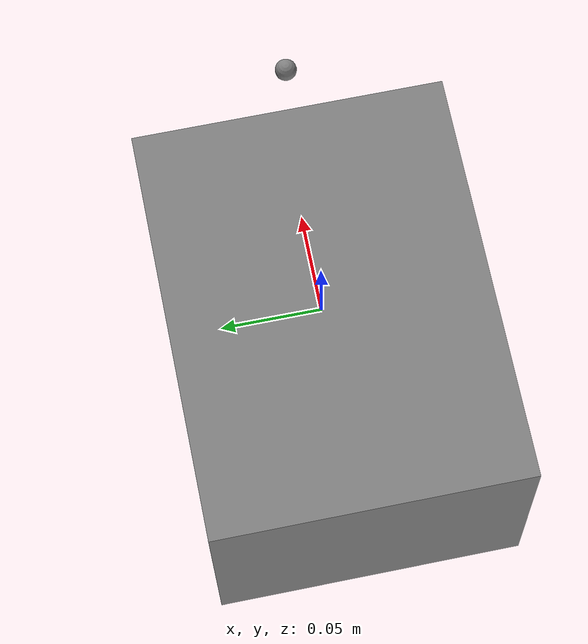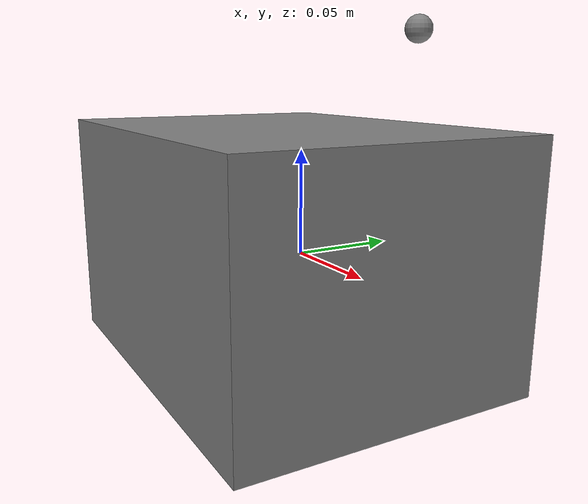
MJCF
<mujoco model="offset_payload">
  <compiler angle="radian" inertiafromgeom="false"/>
  <worldbody>
    <body name="base">
      <freejoint/>
      <inertial pos="-0.02 0 0" mass="0.5" diaginertia="0.01 0.015 0.02"/>
      <geom type="box" pos="-0.02 0 0" size="0.1 0.075 0.06" contype="0" conaffinity="0"/>
      <site name="cable_attachment" pos="0.08 0 0.1" size="0.005"/>
    </body>
  </worldbody>
</mujoco>
